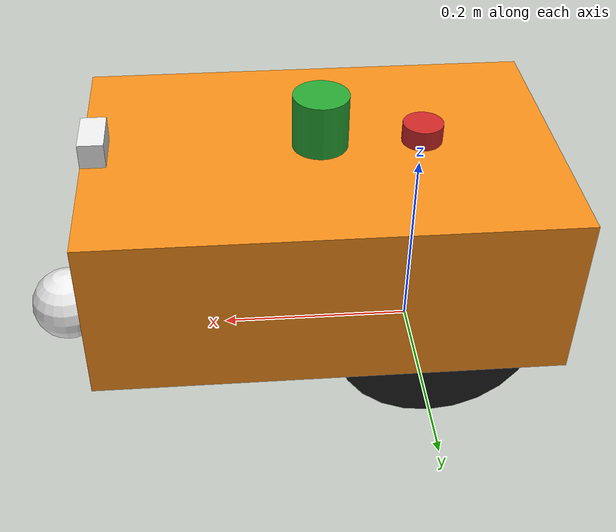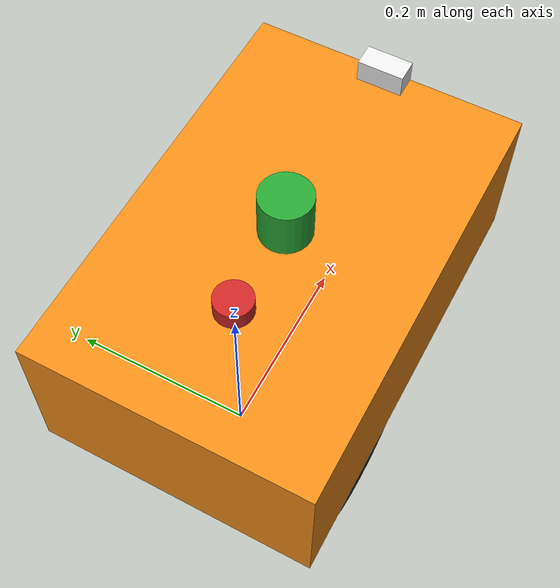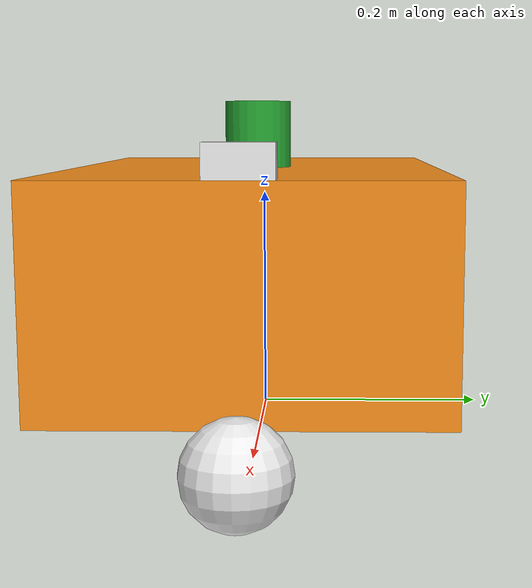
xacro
<?xml version="1.0"?>
<robot name="rosbot"
  xmlns:xacro="http://www.ros.org/wiki/xacro">
  <!-- TODO is use_sim argument used in any way? -->
  <xacro:arg name="use_fake_hardware" default="false" />
  <xacro:arg name="fake_sensor_commands" default="false" />
  <xacro:arg name="prefix" default="" />

  <xacro:include filename="$(find rosbot_description)/urdf/rosbot_links.urdf.xacro" />
  <xacro:include filename="$(find rosbot_description)/gazebo/rosbot.materials.xacro" />
  <xacro:include filename="$(find rosbot_description)/gazebo/rosbot.gazebo.xacro" />
  <xacro:include filename="$(find rosbot_description)/ros2_control/rosbot_system.ros2_control.xacro" />

  <xacro:rosbot_links prefix="$(arg prefix)" />
  <xacro:rosbot_gazebo prefix="$(arg prefix)" />
  <xacro:rosbot_system name="RosbotSystem" prefix="$(arg prefix)" use_fake_hardware="$(arg use_fake_hardware)" fake_sensor_commands="$(arg fake_sensor_commands)"/>

</robot>

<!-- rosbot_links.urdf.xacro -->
<robot xmlns:xacro="http://www.ros.org/wiki/xacro">

  <!-- include inertia calculation macros -->
  <xacro:include filename="$(find rosbot_description)/urdf/inertia.urdf.xacro" />

  <xacro:macro name="rosbot_links" params="prefix">

    <!-- body properties -->
    <xacro:property name="body_mass" value="6.0" />
    <xacro:property name="body_width" value="0.46" />
    <xacro:property name="body_length" value="0.3" />
    <xacro:property name="body_height" value="0.17" />
    <xacro:property name="body_ground_offset" value="0.0575" />

    <!-- lidar properties -->
    <xacro:property name="lidar_height" value="0.055" />
    <xacro:property name="lidar_radius" value="0.0275" />

    <!-- rear wheel properties -->
    <xacro:property name="rear_wheel_mass" value="0.5" />
    <xacro:property name="rear_wheel_width" value="0.05" />
    <xacro:property name="rear_wheel_radius" value="0.0975" />
    <xacro:property name="rear_wheel_origin_x" value="-0.1" />
    <xacro:property name="rear_wheel_distance" value="0.241" />

    <!-- front caster wheel properties -->
    <xacro:property name="front_wheel_mass" value="0.2" />
    <xacro:property name="front_wheel_width" value="0.025" />
    <xacro:property name="front_wheel_radius" value="0.0385" />
    <xacro:property name="front_wheel_origin_x" value="0.26757" />

    <!-- imu properties -->
    <xacro:property name="imu_size" value="0.02" />

    <!-- camera properties -->
    <xacro:property name="camera_width" value="0.025" />
    <xacro:property name="camera_length" value="0.05" />
    <xacro:property name="camera_height" value="0.025" />

    <!-- PHYSICAL ROBOT MEASUREMENTS -->
    <!-- robot is 300mm wide, 460mm long, 170mm tall -->
    <!-- front wheels are 38.5mm off the ground surface -->
    <!-- robot body is 57.5mm off the ground surface -->
    <!-- robot rear wheel diameter is 195mm (radius 97.5mm) -->
    <!-- robot rear wheels axis is 97.5mm off the ground surface -->
    <!-- robot rear wheels axis is 100mm from the center of the body -->
    <!-- front wheel diameter 77mm (radius 38.5mm)  -->
    <!-- robot front wheels axis is -267.57mm from the center of the body -->
    <!-- small motor pulley has 16 teeth -->
    <!-- large wheel pulley has 72 teeth -->
    <!-- motor to wheel gear ratio is 72/16 = 4.5 -->

    <!-- base link and footprint -->
    <link name="${prefix}base_link"/>

    <!-- center of the robot projected on the ground, used for navigation calculation -->
    <link name="base_footprint"/>
    <joint name="${prefix}base_joint" type="fixed">
      <parent link="${prefix}base_link"/>
      <child link="${prefix}base_footprint" />
      <origin xyz="${rear_wheel_origin_x * -1} 0 0" rpy="0 0 0"/>
    </joint>

    <!-- body -->
    <link name="${prefix}body">
      <visual>
        <origin xyz="0 0 0" rpy="0 0 0"/>
        <geometry>
          <box size="${body_width} ${body_length} ${body_height}"/>
          <!-- TODO replace simple box with robot mesh -->
        </geometry>
        <material name="orange"/>
      </visual>
      <collision>
        <origin xyz="0 0 0" rpy="0 0 0"/>
        <geometry>
          <box size="${body_width} ${body_length} ${body_height}"/>
        </geometry>
      </collision>
      <xacro:box_inertia m="${body_mass}" w="${body_width}" d="${body_length}" h="${body_height}"/>
    </link>
    <joint name="${prefix}body_joint" type="fixed">
      <parent link="${prefix}base_link"/>
      <child link="${prefix}body"/>
      <origin xyz="${-rear_wheel_origin_x} 0 ${body_ground_offset + body_height / 2}" rpy="0 0 0"/>
      <axis xyz="0 0 1"/>
    </joint>

    <!-- left wheel -->
    <link name="${prefix}left_wheel">
      <visual>
        <origin xyz="0 0 0" rpy="${pi/2} 0 0"/>
        <geometry>
          <cylinder length="${rear_wheel_width}" radius="${rear_wheel_radius}"/>
        </geometry>
        <material name="black"/>
      </visual>
      <collision>
        <origin xyz="0 0 0" rpy="${pi/2} 0 0"/>
        <geometry>
          <cylinder length="${rear_wheel_width}" radius="${rear_wheel_radius}"/>
        </geometry>
      </collision>
      <xacro:cylinder_inertia m="${rear_wheel_mass}" r="${rear_wheel_radius}" h="${rear_wheel_width}"/>
    </link>
    <joint name="${prefix}left_wheel_joint" type="continuous">
      <parent link="${prefix}base_link"/>
      <child link="${prefix}left_wheel"/>
      <origin xyz="0 ${rear_wheel_distance/2} ${rear_wheel_radius}" rpy="0 0 0"/>
      <axis xyz="0 1 0"/>
      <dynamics damping="0.2"/>
    </joint>

    <!-- right wheel -->
    <link name="${prefix}right_wheel">
      <visual>
        <origin xyz="0 0 0" rpy="${pi/2} 0 0"/>
        <geometry>
          <cylinder length="${rear_wheel_width}" radius="${rear_wheel_radius}"/>
        </geometry>
        <material name="black"/>
      </visual>
      <collision>
        <origin xyz="0 0 0" rpy="${pi/2} 0 0"/>
        <geometry>
          <cylinder length="${rear_wheel_width}" radius="${rear_wheel_radius}"/>
        </geometry>
      </collision>
      <xacro:cylinder_inertia m="${rear_wheel_mass}" r="${rear_wheel_radius}" h="${rear_wheel_width}"/>
    </link>
    <joint name="${prefix}right_wheel_joint" type="continuous">
      <parent link="${prefix}base_link"/>
      <child link="${prefix}right_wheel"/>
      <origin xyz="0 -${rear_wheel_distance/2} ${rear_wheel_radius}" rpy="0 0 0"/>
      <axis xyz="0 1 0"/>
      <dynamics damping="0.2"/>
    </joint>

    <!-- front caster wheel -->
    <link name="${prefix}front_wheel">
      <visual>
        <origin xyz="0 0 0" rpy="0 0 0"/>
        <geometry>
          <sphere radius="${front_wheel_radius}"/>
        </geometry>
        <material name="white"/>
      </visual>
      <collision>
        <origin xyz="0 0 0" rpy="0 0 0"/>
        <geometry>
          <sphere radius="${front_wheel_radius}"/>
        </geometry>
      </collision>
      <xacro:sphere_inertia m="${front_wheel_mass}" r="${front_wheel_radius}"/>
    </link>
    <joint name="${prefix}front_wheel_joint" type="fixed">
      <parent link="${prefix}body"/>
      <child link="${prefix}front_wheel"/>
      <origin xyz="${front_wheel_origin_x} 0 ${front_wheel_radius - body_height / 2 - body_ground_offset}" rpy="0 0 0"/>
      <axis xyz="0 0 1"/>
      <dynamics damping="0.2"/>
    </joint>

    <!-- lidar -->
    <link name="${prefix}base_laser">
      <visual>
        <origin xyz="0 0 0" rpy="0 0 0"/>
        <geometry>
          <cylinder length="${lidar_height}" radius="${lidar_radius}"/>
        </geometry>
        <material name="green"/>
      </visual>
    </link>
    <joint name="${prefix}lidar_joint" type="fixed">
      <parent link="${prefix}body"/>
      <child link="${prefix}base_laser"/>
      <origin xyz="0 0 ${body_height / 2 + lidar_height / 2}" rpy="0 0 ${pi}"/>
      <axis xyz="0 0 1"/>
    </joint>

    <!-- imu -->
    <link name="imu_link">
      <visual>
        <origin xyz="0 0 0" rpy="0 0 0"/>
        <geometry>
          <cylinder length="${imu_size}" radius="${imu_size}"/>
        </geometry>
        <material name="red"/>
      </visual>
      <collision>
        <geometry>
          <box size="${imu_size} ${imu_size} ${imu_size}"/>
          <cylinder length="${imu_size}" radius="${imu_size / 2}"/>
        </geometry>
      </collision>
      <xacro:cylinder_inertia m="0.01" r="${imu_size}" h="${imu_size}"/>
    </link>
    <joint name="imu_joint" type="fixed">
      <parent link="body"/>
      <child link="imu_link"/>
      <origin xyz="${rear_wheel_origin_x} 0 ${body_height / 2 + imu_size / 2}" rpy="0 0 0"/>
      <axis xyz="0 0 1"/>
    </joint>

    <!-- rgb camera -->
    <link name="${prefix}rgb_camera_link">
      <visual>
        <origin xyz="${-camera_width / 2} 0 0" rpy="0 0 0"/>
        <geometry>
          <box size="${camera_width} ${camera_length} ${camera_height}"/>
        </geometry>
        <material name="white"/>
      </visual>
    </link>
    <joint name="${prefix}camera_joint" type="fixed">
      <parent link="${prefix}body"/>
      <child link="${prefix}rgb_camera_link"/>
      <origin xyz="${body_width / 2} 0 ${body_height / 2 + camera_height / 2}" rpy="0 0 0"/>
    </joint>

    <!-- depth camera -->
    <link name="depth_camera_link"/>
    <joint name="depth_camera_joint" type="fixed">
      <origin xyz="0 0 0" rpy="${-pi/2} 0 ${pi/2}"/>
      <parent link="rgb_camera_link"/>
      <child link="depth_camera_link"/>
    </joint>

  </xacro:macro>

</robot>

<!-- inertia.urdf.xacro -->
<robot xmlns:xacro="http://www.ros.org/wiki/xacro">
    <!-- macros for calculating inertias of common 3d shapes  -->
    <xacro:macro name="box_inertia" params="m w h d originXYZ:='0 0 0'">
        <inertial>
            <origin xyz="${originXYZ}" rpy="${pi/2} 0 ${pi/2}"/>
            <mass value="${m}"/>
            <inertia ixx="${(m/12) * (h*h + d*d)}" ixy="0.0" ixz="0.0" iyy="${(m/12) * (w*w + d*d)}" iyz="0.0" izz="${(m/12) * (w*w + h*h)}"/>
        </inertial>
    </xacro:macro>

    <xacro:macro name="cylinder_inertia" params="m r h originXYZ:='0 0 0'">
        <inertial>
            <origin xyz="${originXYZ}" rpy="${pi/2} 0 0" />
            <mass value="${m}"/>
            <inertia ixx="${(m/12) * (3*r*r + h*h)}" ixy = "0" ixz = "0" iyy="${(m/12) * (3*r*r + h*h)}" iyz = "0" izz="${(m/2) * (r*r)}"/>
        </inertial>
    </xacro:macro>

    <xacro:macro name="sphere_inertia" params="m r">
        <inertial>
            <mass value="${m}"/>
            <inertia ixx="${(2/5) * m * (r*r)}" ixy="0.0" ixz="0.0" iyy="${(2/5) * m * (r*r)}" iyz="0.0" izz="${(2/5) * m * (r*r)}"/>
        </inertial>
    </xacro:macro>
</robot>
